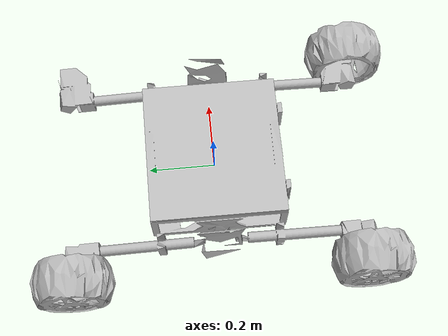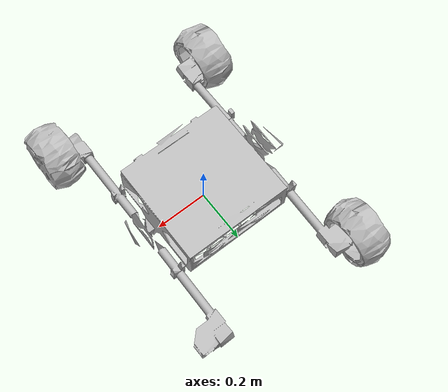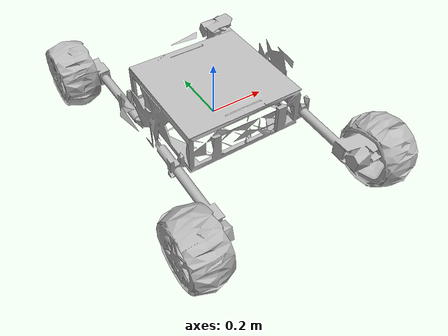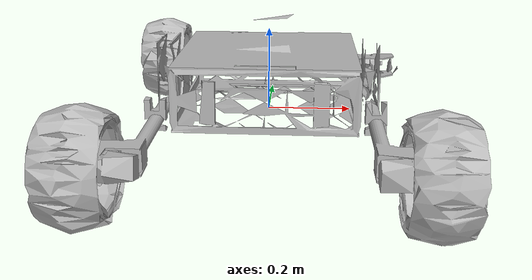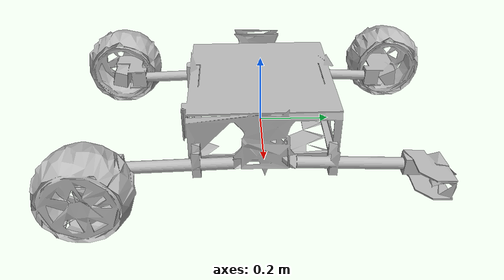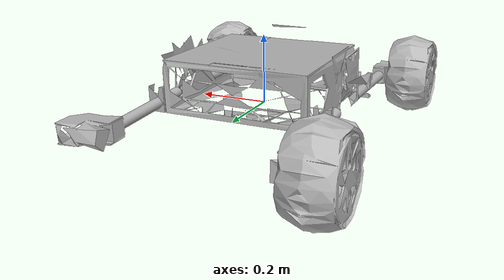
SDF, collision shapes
<sdf version='1.7'>
  <model name='eve'>
    <link name='root'>
      <inertial>
        <pose>0 0 0 0 -0 0</pose>
        <mass>5</mass>
        <inertia>
          <ixx>0.013</ixx>
          <ixy>0</ixy>
          <ixz>0</ixz>
          <iyy>0.009</iyy>
          <iyz>0</iyz>
          <izz>0.005</izz>
        </inertia>
      </inertial>
      <collision name='root_fixed_joint_lump__chassis_collision'>
        <pose>0 0 0 1.5708 -0 0</pose>
        <geometry>
          <mesh>
            <scale>0.001 0.001 0.001</scale>
            <uri>/home/mksneo/mks_ws/src/mks_description/meshes/simplified_meshes/chassis_simp.stl</uri>
          </mesh>
        </geometry>
      </collision>
      <visual name='root_fixed_joint_lump__chassis_visual'>
        <pose>0 0 0 1.5708 -0 0</pose>
        <geometry>
          <mesh>
            <scale>0.001 0.001 0.001</scale>
            <uri>/home/mksneo/mks_ws/src/mks_description/meshes/chassis.stl</uri>
          </mesh>
        </geometry>
      </visual>
    </link>
    <joint name='back_left_leg_to_chassis' type='revolute'>
      <pose relative_to='root'>0.247 0.058093 0.025691 0 -0 0</pose>
      <parent>root</parent>
      <child>back_left_leg</child>
      <axis>
        <xyz>1 0 0</xyz>
        <limit>
          <lower>-1.0472</lower>
          <upper>0</upper>
          <effort>5</effort>
          <velocity>1</velocity>
        </limit>
        <dynamics>
          <spring_reference>0</spring_reference>
          <spring_stiffness>0</spring_stiffness>
        </dynamics>
      </axis>
    </joint>
    <link name='back_left_leg'>
      <pose relative_to='back_left_leg_to_chassis'>0 0 0 0 -0 0</pose>
      <inertial>
        <pose>0 0 0 0 -0 0</pose>
        <mass>1.5</mass>
        <inertia>
          <ixx>0.008</ixx>
          <ixy>0</ixy>
          <ixz>0</ixz>
          <iyy>0.008</iyy>
          <iyz>0</iyz>
          <izz>0.0009</izz>
        </inertia>
      </inertial>
      <collision name='back_left_leg_collision'>
        <pose>-0.247 -0.058093 -0.025691 1.5708 -0 0</pose>
        <geometry>
          <mesh>
            <scale>0.001 0.001 0.001</scale>
            <uri>/home/mksneo/mks_ws/src/mks_description/meshes/simplified_meshes/back_left_leg_simp.stl</uri>
          </mesh>
        </geometry>
      </collision>
      <visual name='back_left_leg_visual'>
        <pose>-0.247 -0.058093 -0.025691 1.5708 -0 0</pose>
        <geometry>
          <mesh>
            <scale>0.001 0.001 0.001</scale>
            <uri>/home/mksneo/mks_ws/src/mks_description/meshes/back_left_leg.stl</uri>
          </mesh>
        </geometry>
      </visual>
    </link>
    <joint name='back_left_wheel_to_leg' type='revolute'>
      <pose relative_to='back_left_leg'>0.0925 0.387904 -0.009518 0 -0 0</pose>
      <parent>back_left_leg</parent>
      <child>back_left_wheel</child>
      <axis>
        <xyz>1 0 0</xyz>
        <limit>
          <lower>-1e+16</lower>
          <upper>1e+16</upper>
        </limit>
        <dynamics>
          <spring_reference>0</spring_reference>
          <spring_stiffness>0</spring_stiffness>
        </dynamics>
      </axis>
    </joint>
    <link name='back_left_wheel'>
      <pose relative_to='back_left_wheel_to_leg'>0 0 0 0 -0 0</pose>
      <inertial>
        <pose>0 0 0 0 -0 0</pose>
        <mass>0.8</mass>
        <inertia>
          <ixx>0.001</ixx>
          <ixy>0</ixy>
          <ixz>0</ixz>
          <iyy>0.0009</iyy>
          <iyz>0</iyz>
          <izz>0.0009</izz>
        </inertia>
      </inertial>
      <collision name='back_left_wheel_collision'>
        <pose>-0.3395 0.445997 -0.016173 1.5708 -0 0</pose>
        <geometry>
          <mesh>
            <scale>0.001 0.001 0.001</scale>
            <uri>/home/mksneo/mks_ws/src/mks_description/meshes/simplified_meshes/back_left_wheel_simp.stl</uri>
          </mesh>
        </geometry>
      </collision>
      <visual name='back_left_wheel_visual'>
        <pose>-0.3395 0.445997 -0.016173 1.5708 -0 0</pose>
        <geometry>
          <mesh>
            <scale>0.001 0.001 0.001</scale>
            <uri>/home/mksneo/mks_ws/src/mks_description/meshes/back_left_wheel.stl</uri>
          </mesh>
        </geometry>
      </visual>
    </link>
    <joint name='back_right_leg_to_chassis' type='revolute'>
      <pose relative_to='root'>-0.247 0.058093 0.025691 0 -0 0</pose>
      <parent>root</parent>
      <child>back_right_leg</child>
      <axis>
        <xyz>1 0 0</xyz>
        <limit>
          <lower>-1.0472</lower>
          <upper>0</upper>
          <effort>5</effort>
          <velocity>1</velocity>
        </limit>
        <dynamics>
          <spring_reference>0</spring_reference>
          <spring_stiffness>0</spring_stiffness>
        </dynamics>
      </axis>
    </joint>
    <link name='back_right_leg'>
      <pose relative_to='back_right_leg_to_chassis'>0 0 0 0 -0 0</pose>
      <inertial>
        <pose>0 0 0 0 -0 0</pose>
        <mass>1.5</mass>
        <inertia>
          <ixx>0.008</ixx>
          <ixy>0</ixy>
          <ixz>0</ixz>
          <iyy>0.008</iyy>
          <iyz>0</iyz>
          <izz>0.0009</izz>
        </inertia>
      </inertial>
      <collision name='back_right_leg_collision'>
        <pose>0.247 -0.058093 -0.025691 1.5708 -0 0</pose>
        <geometry>
          <mesh>
            <scale>0.001 0.001 0.001</scale>
            <uri>/home/mksneo/mks_ws/src/mks_description/meshes/simplified_meshes/back_right_leg_simp.stl</uri>
          </mesh>
        </geometry>
      </collision>
      <visual name='back_right_leg_visual'>
        <pose>0.247 -0.058093 -0.025691 1.5708 -0 0</pose>
        <geometry>
          <mesh>
            <scale>0.001 0.001 0.001</scale>
            <uri>/home/mksneo/mks_ws/src/mks_description/meshes/back_right_leg.stl</uri>
          </mesh>
        </geometry>
      </visual>
    </link>
    <joint name='back_right_wheel_to_leg' type='revolute'>
      <pose relative_to='back_right_leg'>-0.0925 0.387904 -0.009518 0 -0 0</pose>
      <parent>back_right_leg</parent>
      <child>back_right_wheel</child>
      <axis>
        <xyz>1 0 0</xyz>
        <limit>
          <lower>-1e+16</lower>
          <upper>1e+16</upper>
        </limit>
        <dynamics>
          <spring_reference>0</spring_reference>
          <spring_stiffness>0</spring_stiffness>
        </dynamics>
      </axis>
    </joint>
    <link name='back_right_wheel'>
      <pose relative_to='back_right_wheel_to_leg'>0 0 0 0 -0 0</pose>
      <inertial>
        <pose>0 0 0 0 -0 0</pose>
        <mass>0.8</mass>
        <inertia>
          <ixx>0.001</ixx>
          <ixy>0</ixy>
          <ixz>0</ixz>
          <iyy>0.0009</iyy>
          <iyz>0</iyz>
          <izz>0.0009</izz>
        </inertia>
      </inertial>
      <collision name='back_right_wheel_collision'>
        <pose>0.3395 0.445997 -0.016173 1.5708 -0 0</pose>
        <geometry>
          <mesh>
            <scale>0.001 0.001 0.001</scale>
            <uri>/home/mksneo/mks_ws/src/mks_description/meshes/simplified_meshes/back_right_wheel_simp.stl</uri>
          </mesh>
        </geometry>
      </collision>
      <visual name='back_right_wheel_visual'>
        <pose>0.3395 0.445997 -0.016173 1.5708 -0 0</pose>
        <geometry>
          <mesh>
            <scale>0.001 0.001 0.001</scale>
            <uri>/home/mksneo/mks_ws/src/mks_description/meshes/back_right_wheel.stl</uri>
          </mesh>
        </geometry>
      </visual>
    </link>
    <joint name='front_left_leg_to_chassis' type='revolute'>
      <pose relative_to='root'>0.247 -0.058093 0.025691 0 -0 0</pose>
      <parent>root</parent>
      <child>front_left_leg</child>
      <axis>
        <xyz>1 0 0</xyz>
        <limit>
          <lower>0</lower>
          <upper>1.0472</upper>
          <effort>5</effort>
          <velocity>1</velocity>
        </limit>
        <dynamics>
          <spring_reference>0</spring_reference>
          <spring_stiffness>0</spring_stiffness>
        </dynamics>
      </axis>
    </joint>
    <link name='front_left_leg'>
      <pose relative_to='front_left_leg_to_chassis'>0 0 0 0 -0 0</pose>
      <inertial>
        <pose>0 0 0 0 -0 0</pose>
        <mass>1.5</mass>
        <inertia>
          <ixx>0.008</ixx>
          <ixy>0</ixy>
          <ixz>0</ixz>
          <iyy>0.008</iyy>
          <iyz>0</iyz>
          <izz>0.0009</izz>
        </inertia>
      </inertial>
      <collision name='front_left_leg_collision'>
        <pose>-0.247 0.058093 -0.025691 1.5708 -0 0</pose>
        <geometry>
          <mesh>
            <scale>0.001 0.001 0.001</scale>
            <uri>/home/mksneo/mks_ws/src/mks_description/meshes/simplified_meshes/front_left_leg_simp.stl</uri>
          </mesh>
        </geometry>
      </collision>
      <visual name='front_left_leg_visual'>
        <pose>-0.247 0.058093 -0.025691 1.5708 -0 0</pose>
        <geometry>
          <mesh>
            <scale>0.001 0.001 0.001</scale>
            <uri>/home/mksneo/mks_ws/src/mks_description/meshes/front_left_leg.stl</uri>
          </mesh>
        </geometry>
      </visual>
    </link>
    <joint name='front_left_wheel_to_leg' type='revolute'>
      <pose relative_to='front_left_leg'>0.0925 -0.387904 -0.009518 0 -0 0</pose>
      <parent>front_left_leg</parent>
      <child>front_left_wheel</child>
      <axis>
        <xyz>1 0 0</xyz>
        <limit>
          <lower>-1e+16</lower>
          <upper>1e+16</upper>
        </limit>
        <dynamics>
          <spring_reference>0</spring_reference>
          <spring_stiffness>0</spring_stiffness>
        </dynamics>
      </axis>
    </joint>
    <link name='front_left_wheel'>
      <pose relative_to='front_left_wheel_to_leg'>0 0 0 0 -0 0</pose>
      <inertial>
        <pose>0 0 0 0 -0 0</pose>
        <mass>0.8</mass>
        <inertia>
          <ixx>0.001</ixx>
          <ixy>0</ixy>
          <ixz>0</ixz>
          <iyy>0.0009</iyy>
          <iyz>0</iyz>
          <izz>0.0009</izz>
        </inertia>
      </inertial>
      <collision name='front_left_wheel_collision'>
        <pose>-0.3395 0.445997 -0.016173 1.5708 -0 0</pose>
        <geometry>
          <mesh>
            <scale>0.001 0.001 0.001</scale>
            <uri>/home/mksneo/mks_ws/src/mks_description/meshes/simplified_meshes/front_left_wheel_simp.stl</uri>
          </mesh>
        </geometry>
      </collision>
      <visual name='front_left_wheel_visual'>
        <pose>-0.3395 0.445997 -0.016173 1.5708 -0 0</pose>
        <geometry>
          <mesh>
            <scale>0.001 0.001 0.001</scale>
            <uri>/home/mksneo/mks_ws/src/mks_description/meshes/front_left_wheel.stl</uri>
          </mesh>
        </geometry>
      </visual>
    </link>
    <joint name='front_right_leg_to_chassis' type='revolute'>
      <pose relative_to='root'>-0.247 -0.058093 0.025691 0 -0 0</pose>
      <parent>root</parent>
      <child>front_right_leg</child>
      <axis>
        <xyz>1 0 0</xyz>
        <limit>
          <lower>0</lower>
          <upper>1.0472</upper>
          <effort>5</effort>
          <velocity>1</velocity>
        </limit>
        <dynamics>
          <spring_reference>0</spring_reference>
          <spring_stiffness>0</spring_stiffness>
        </dynamics>
      </axis>
    </joint>
    <link name='front_right_leg'>
      <pose relative_to='front_right_leg_to_chassis'>0 0 0 0 -0 0</pose>
      <inertial>
        <pose>0 0 0 0 -0 0</pose>
        <mass>1.5</mass>
        <inertia>
          <ixx>0.008</ixx>
          <ixy>0</ixy>
          <ixz>0</ixz>
          <iyy>0.008</iyy>
          <iyz>0</iyz>
          <izz>0.0009</izz>
        </inertia>
      </inertial>
      <collision name='front_right_leg_collision'>
        <pose>0.247 0.058093 -0.025691 1.5708 -0 0</pose>
        <geometry>
          <mesh>
            <scale>0.001 0.001 0.001</scale>
            <uri>/home/mksneo/mks_ws/src/mks_description/meshes/simplified_meshes/front_right_leg_simp.stl</uri>
          </mesh>
        </geometry>
      </collision>
      <visual name='front_right_leg_visual'>
        <pose>0.247 0.058093 -0.025691 1.5708 -0 0</pose>
        <geometry>
          <mesh>
            <scale>0.001 0.001 0.001</scale>
            <uri>/home/mksneo/mks_ws/src/mks_description/meshes/front_right_leg.stl</uri>
          </mesh>
        </geometry>
      </visual>
    </link>
    <joint name='front_right_wheel_to_leg' type='revolute'>
      <pose relative_to='front_right_leg'>-0.0925 -0.387904 -0.009518 0 -0 0</pose>
      <parent>front_right_leg</parent>
      <child>front_right_wheel</child>
      <axis>
        <xyz>1 0 0</xyz>
        <limit>
          <lower>-1e+16</lower>
          <upper>1e+16</upper>
        </limit>
        <dynamics>
          <spring_reference>0</spring_reference>
          <spring_stiffness>0</spring_stiffness>
        </dynamics>
      </axis>
    </joint>
    <link name='front_right_wheel'>
      <pose relative_to='front_right_wheel_to_leg'>0 0 0 0 -0 0</pose>
      <inertial>
        <pose>0 0 0 0 -0 0</pose>
        <mass>0.8</mass>
        <inertia>
          <ixx>0.001</ixx>
          <ixy>0</ixy>
          <ixz>0</ixz>
          <iyy>0.0009</iyy>
          <iyz>0</iyz>
          <izz>0.0009</izz>
        </inertia>
      </inertial>
      <collision name='front_right_wheel_collision'>
        <pose>0.3395 0.445997 -0.016173 1.5708 -0 0</pose>
        <geometry>
          <mesh>
            <scale>0.001 0.001 0.001</scale>
            <uri>/home/mksneo/mks_ws/src/mks_description/meshes/simplified_meshes/front_right_wheel_simp.stl</uri>
          </mesh>
        </geometry>
      </collision>
      <visual name='front_right_wheel_visual'>
        <pose>0.3395 0.445997 -0.016173 1.5708 -0 0</pose>
        <geometry>
          <mesh>
            <scale>0.001 0.001 0.001</scale>
            <uri>/home/mksneo/mks_ws/src/mks_description/meshes/front_right_wheel.stl</uri>
          </mesh>
        </geometry>
      </visual>
    </link>
  </model>
</sdf>
